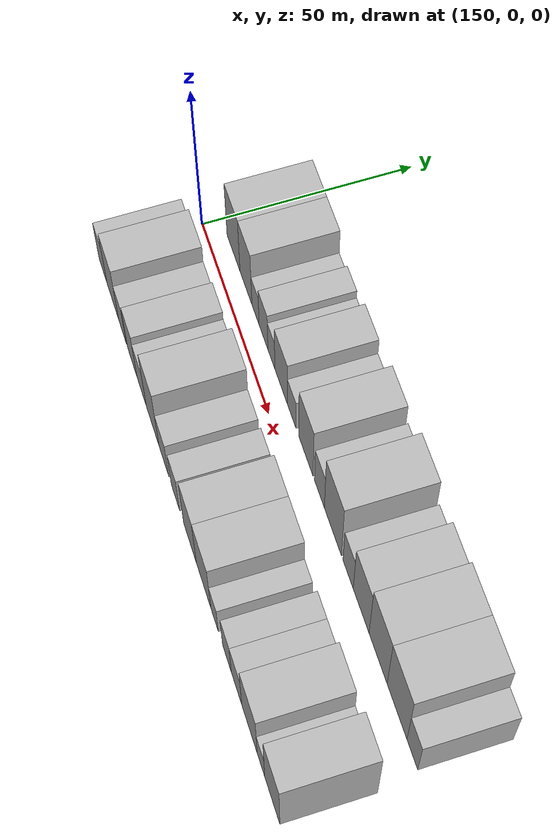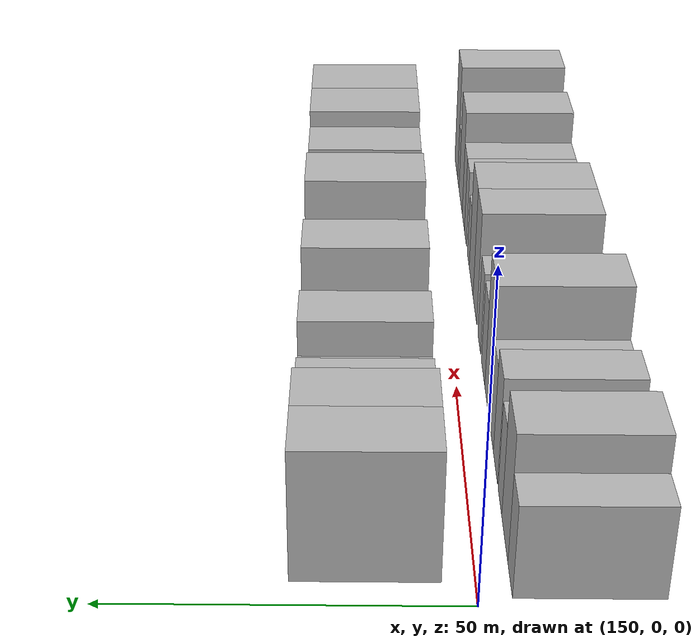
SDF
<sdf version="1.6">
 <world name="default">
  <model name="building_16">
   <static>1</static>
   <pose>159.4754 14.5000 0 0.000000 0.000000 1.570796</pose>
   <link name="link">
    <pose>0 0 10.50 0 0 0</pose>
    <collision name="collision"><geometry><box><size>20.0000 9.8442 21.0000</size></box></geometry></collision>
    <visual name="visual">
     <cast_shadows>0</cast_shadows>
     <geometry><box><size>20.0000 9.8442 21.0000</size></box></geometry>
     <material>
      <script>
       <uri>model://HANNAS_wall/materials/scripts</uri>
       <uri>model://HANNAS_wall/materials/textures</uri>
       <name>vrc/HANNAS_wall</name>
      </script>
     </material>
    </visual>
   </link>
  </model>
  <model name="building_17">
   <static>1</static>
   <pose>168.8859 14.5000 0 0.000000 0.000000 1.570796</pose>
   <link name="link">
    <pose>0 0 10.50 0 0 0</pose>
    <collision name="collision"><geometry><box><size>20.0000 8.9767 21.0000</size></box></geometry></collision>
    <visual name="visual">
     <cast_shadows>0</cast_shadows>
     <geometry><box><size>20.0000 8.9767 21.0000</size></box></geometry>
     <material>
      <script>
       <uri>model://HANNAS_wall/materials/scripts</uri>
       <uri>model://HANNAS_wall/materials/textures</uri>
       <name>vrc/HANNAS_wall</name>
      </script>
     </material>
    </visual>
   </link>
  </model>
  <model name="building_18">
   <static>1</static>
   <pose>176.0145 14.5000 0 0.000000 0.000000 1.570796</pose>
   <link name="link">
    <pose>0 0 6.00 0 0 0</pose>
    <collision name="collision"><geometry><box><size>20.0000 5.2805 12.0000</size></box></geometry></collision>
    <visual name="visual">
     <cast_shadows>0</cast_shadows>
     <geometry><box><size>20.0000 5.2805 12.0000</size></box></geometry>
     <material>
      <script>
       <uri>model://HANNAS_wall/materials/scripts</uri>
       <uri>model://HANNAS_wall/materials/textures</uri>
       <name>vrc/HANNAS_wall</name>
      </script>
     </material>
    </visual>
   </link>
  </model>
  <model name="building_19">
   <static>1</static>
   <pose>181.8732 14.5000 0 0.000000 0.000000 1.570796</pose>
   <link name="link">
    <pose>0 0 7.50 0 0 0</pose>
    <collision name="collision"><geometry><box><size>20.0000 6.4368 15.0000</size></box></geometry></collision>
    <visual name="visual">
     <cast_shadows>0</cast_shadows>
     <geometry><box><size>20.0000 6.4368 15.0000</size></box></geometry>
     <material>
      <script>
       <uri>model://HANNAS_wall/materials/scripts</uri>
       <uri>model://HANNAS_wall/materials/textures</uri>
       <name>vrc/HANNAS_wall</name>
      </script>
     </material>
    </visual>
   </link>
  </model>
  <model name="building_20">
   <static>1</static>
   <pose>187.6215 14.5000 0 0.000000 0.000000 1.570796</pose>
   <link name="link">
    <pose>0 0 6.00 0 0 0</pose>
    <collision name="collision"><geometry><box><size>20.0000 5.0598 12.0000</size></box></geometry></collision>
    <visual name="visual">
     <cast_shadows>0</cast_shadows>
     <geometry><box><size>20.0000 5.0598 12.0000</size></box></geometry>
     <material>
      <script>
       <uri>model://HANNAS_wall/materials/scripts</uri>
       <uri>model://HANNAS_wall/materials/textures</uri>
       <name>vrc/HANNAS_wall</name>
      </script>
     </material>
    </visual>
   </link>
  </model>
  <model name="building_21">
   <static>1</static>
   <pose>194.6478 14.5000 0 0.000000 0.000000 1.570796</pose>
   <link name="link">
    <pose>0 0 9.00 0 0 0</pose>
    <collision name="collision"><geometry><box><size>20.0000 8.9928 18.0000</size></box></geometry></collision>
    <visual name="visual">
     <cast_shadows>0</cast_shadows>
     <geometry><box><size>20.0000 8.9928 18.0000</size></box></geometry>
     <material>
      <script>
       <uri>model://HANNAS_wall/materials/scripts</uri>
       <uri>model://HANNAS_wall/materials/textures</uri>
       <name>vrc/HANNAS_wall</name>
      </script>
     </material>
    </visual>
   </link>
  </model>
  <model name="building_22">
   <static>1</static>
   <pose>202.1001 14.5000 0 0.000000 0.000000 1.570796</pose>
   <link name="link">
    <pose>0 0 6.00 0 0 0</pose>
    <collision name="collision"><geometry><box><size>20.0000 5.9119 12.0000</size></box></geometry></collision>
    <visual name="visual">
     <cast_shadows>0</cast_shadows>
     <geometry><box><size>20.0000 5.9119 12.0000</size></box></geometry>
     <material>
      <script>
       <uri>model://HANNAS_wall/materials/scripts</uri>
       <uri>model://HANNAS_wall/materials/textures</uri>
       <name>vrc/HANNAS_wall</name>
      </script>
     </material>
    </visual>
   </link>
  </model>
  <model name="building_23">
   <static>1</static>
   <pose>211.9157 14.5000 0 0.000000 0.000000 1.570796</pose>
   <link name="link">
    <pose>0 0 10.50 0 0 0</pose>
    <collision name="collision"><geometry><box><size>20.0000 9.7193 21.0000</size></box></geometry></collision>
    <visual name="visual">
     <cast_shadows>0</cast_shadows>
     <geometry><box><size>20.0000 9.7193 21.0000</size></box></geometry>
     <material>
      <script>
       <uri>model://HANNAS_wall/materials/scripts</uri>
       <uri>model://HANNAS_wall/materials/textures</uri>
       <name>vrc/HANNAS_wall</name>
      </script>
     </material>
    </visual>
   </link>
  </model>
  <model name="building_24">
   <static>1</static>
   <pose>221.1197 14.5000 0 0.000000 0.000000 1.570796</pose>
   <link name="link">
    <pose>0 0 7.50 0 0 0</pose>
    <collision name="collision"><geometry><box><size>20.0000 6.6887 15.0000</size></box></geometry></collision>
    <visual name="visual">
     <cast_shadows>0</cast_shadows>
     <geometry><box><size>20.0000 6.6887 15.0000</size></box></geometry>
     <material>
      <script>
       <uri>model://HANNAS_wall/materials/scripts</uri>
       <uri>model://HANNAS_wall/materials/textures</uri>
       <name>vrc/HANNAS_wall</name>
      </script>
     </material>
    </visual>
   </link>
  </model>
  <model name="building_25">
   <static>1</static>
   <pose>230.0817 14.5000 0 0.000000 0.000000 1.570796</pose>
   <link name="link">
    <pose>0 0 12.00 0 0 0</pose>
    <collision name="collision"><geometry><box><size>20.0000 11.2353 24.0000</size></box></geometry></collision>
    <visual name="visual">
     <cast_shadows>0</cast_shadows>
     <geometry><box><size>20.0000 11.2353 24.0000</size></box></geometry>
     <material>
      <script>
       <uri>model://HANNAS_wall/materials/scripts</uri>
       <uri>model://HANNAS_wall/materials/textures</uri>
       <name>vrc/HANNAS_wall</name>
      </script>
     </material>
    </visual>
   </link>
  </model>
  <model name="building_26">
   <static>1</static>
   <pose>240.0047 14.5000 0 0.000000 0.000000 1.570796</pose>
   <link name="link">
    <pose>0 0 7.50 0 0 0</pose>
    <collision name="collision"><geometry><box><size>20.0000 6.6107 15.0000</size></box></geometry></collision>
    <visual name="visual">
     <cast_shadows>0</cast_shadows>
     <geometry><box><size>20.0000 6.6107 15.0000</size></box></geometry>
     <material>
      <script>
       <uri>model://HANNAS_wall/materials/scripts</uri>
       <uri>model://HANNAS_wall/materials/textures</uri>
       <name>vrc/HANNAS_wall</name>
      </script>
     </material>
    </visual>
   </link>
  </model>
  <model name="building_27">
   <static>1</static>
   <pose>248.3241 14.5000 0 0.000000 0.000000 1.570796</pose>
   <link name="link">
    <pose>0 0 10.50 0 0 0</pose>
    <collision name="collision"><geometry><box><size>20.0000 10.0281 21.0000</size></box></geometry></collision>
    <visual name="visual">
     <cast_shadows>0</cast_shadows>
     <geometry><box><size>20.0000 10.0281 21.0000</size></box></geometry>
     <material>
      <script>
       <uri>model://HANNAS_wall/materials/scripts</uri>
       <uri>model://HANNAS_wall/materials/textures</uri>
       <name>vrc/HANNAS_wall</name>
      </script>
     </material>
    </visual>
   </link>
  </model>
  <model name="building_28">
   <static>1</static>
   <pose>258.9461 14.5000 0 0.000000 0.000000 1.570796</pose>
   <link name="link">
    <pose>0 0 12.00 0 0 0</pose>
    <collision name="collision"><geometry><box><size>20.0000 11.2160 24.0000</size></box></geometry></collision>
    <visual name="visual">
     <cast_shadows>0</cast_shadows>
     <geometry><box><size>20.0000 11.2160 24.0000</size></box></geometry>
     <material>
      <script>
       <uri>model://HANNAS_wall/materials/scripts</uri>
       <uri>model://HANNAS_wall/materials/textures</uri>
       <name>vrc/HANNAS_wall</name>
      </script>
     </material>
    </visual>
   </link>
  </model>
  <model name="building_29">
   <static>1</static>
   <pose>270.5428 14.5000 0 0.000000 0.000000 1.570796</pose>
   <link name="link">
    <pose>0 0 12.00 0 0 0</pose>
    <collision name="collision"><geometry><box><size>20.0000 11.9774 24.0000</size></box></geometry></collision>
    <visual name="visual">
     <cast_shadows>0</cast_shadows>
     <geometry><box><size>20.0000 11.9774 24.0000</size></box></geometry>
     <material>
      <script>
       <uri>model://HANNAS_wall/materials/scripts</uri>
       <uri>model://HANNAS_wall/materials/textures</uri>
       <name>vrc/HANNAS_wall</name>
      </script>
     </material>
    </visual>
   </link>
  </model>
  <model name="building_30">
   <static>1</static>
   <pose>279.7384 14.5000 0 0.000000 0.000000 1.570796</pose>
   <link name="link">
    <pose>0 0 7.50 0 0 0</pose>
    <collision name="collision"><geometry><box><size>20.0000 6.4136 15.0000</size></box></geometry></collision>
    <visual name="visual">
     <cast_shadows>0</cast_shadows>
     <geometry><box><size>20.0000 6.4136 15.0000</size></box></geometry>
     <material>
      <script>
       <uri>model://HANNAS_wall/materials/scripts</uri>
       <uri>model://HANNAS_wall/materials/textures</uri>
       <name>vrc/HANNAS_wall</name>
      </script>
     </material>
    </visual>
   </link>
  </model>
  <model name="building_45">
   <static>1</static>
   <pose>155.0330 -14.5000 0 0.000000 0.000000 1.570796</pose>
   <link name="link">
    <pose>0 0 7.50 0 0 0</pose>
    <collision name="collision"><geometry><box><size>20.0000 6.7495 15.0000</size></box></geometry></collision>
    <visual name="visual">
     <cast_shadows>0</cast_shadows>
     <geometry><box><size>20.0000 6.7495 15.0000</size></box></geometry>
     <material>
      <script>
       <uri>model://HANNAS_wall/materials/scripts</uri>
       <uri>model://HANNAS_wall/materials/textures</uri>
       <name>vrc/HANNAS_wall</name>
      </script>
     </material>
    </visual>
   </link>
  </model>
  <model name="building_46">
   <static>1</static>
   <pose>163.2947 -14.5000 0 0.000000 0.000000 1.570796</pose>
   <link name="link">
    <pose>0 0 10.50 0 0 0</pose>
    <collision name="collision"><geometry><box><size>20.0000 9.7739 21.0000</size></box></geometry></collision>
    <visual name="visual">
     <cast_shadows>0</cast_shadows>
     <geometry><box><size>20.0000 9.7739 21.0000</size></box></geometry>
     <material>
      <script>
       <uri>model://HANNAS_wall/materials/scripts</uri>
       <uri>model://HANNAS_wall/materials/textures</uri>
       <name>vrc/HANNAS_wall</name>
      </script>
     </material>
    </visual>
   </link>
  </model>
  <model name="building_47">
   <static>1</static>
   <pose>171.2815 -14.5000 0 0.000000 0.000000 1.570796</pose>
   <link name="link">
    <pose>0 0 7.50 0 0 0</pose>
    <collision name="collision"><geometry><box><size>20.0000 6.1996 15.0000</size></box></geometry></collision>
    <visual name="visual">
     <cast_shadows>0</cast_shadows>
     <geometry><box><size>20.0000 6.1996 15.0000</size></box></geometry>
     <material>
      <script>
       <uri>model://HANNAS_wall/materials/scripts</uri>
       <uri>model://HANNAS_wall/materials/textures</uri>
       <name>vrc/HANNAS_wall</name>
      </script>
     </material>
    </visual>
   </link>
  </model>
  <model name="building_48">
   <static>1</static>
   <pose>179.1591 -14.5000 0 0.000000 0.000000 1.570796</pose>
   <link name="link">
    <pose>0 0 9.00 0 0 0</pose>
    <collision name="collision"><geometry><box><size>20.0000 7.5556 18.0000</size></box></geometry></collision>
    <visual name="visual">
     <cast_shadows>0</cast_shadows>
     <geometry><box><size>20.0000 7.5556 18.0000</size></box></geometry>
     <material>
      <script>
       <uri>model://HANNAS_wall/materials/scripts</uri>
       <uri>model://HANNAS_wall/materials/textures</uri>
       <name>vrc/HANNAS_wall</name>
      </script>
     </material>
    </visual>
   </link>
  </model>
  <model name="building_49">
   <static>1</static>
   <pose>186.6302 -14.5000 0 0.000000 0.000000 1.570796</pose>
   <link name="link">
    <pose>0 0 7.50 0 0 0</pose>
    <collision name="collision"><geometry><box><size>20.0000 7.3866 15.0000</size></box></geometry></collision>
    <visual name="visual">
     <cast_shadows>0</cast_shadows>
     <geometry><box><size>20.0000 7.3866 15.0000</size></box></geometry>
     <material>
      <script>
       <uri>model://HANNAS_wall/materials/scripts</uri>
       <uri>model://HANNAS_wall/materials/textures</uri>
       <name>vrc/HANNAS_wall</name>
      </script>
     </material>
    </visual>
   </link>
  </model>
  <model name="building_50">
   <static>1</static>
   <pose>195.2859 -14.5000 0 0.000000 0.000000 1.570796</pose>
   <link name="link">
    <pose>0 0 12.00 0 0 0</pose>
    <collision name="collision"><geometry><box><size>20.0000 9.9250 24.0000</size></box></geometry></collision>
    <visual name="visual">
     <cast_shadows>0</cast_shadows>
     <geometry><box><size>20.0000 9.9250 24.0000</size></box></geometry>
     <material>
      <script>
       <uri>model://HANNAS_wall/materials/scripts</uri>
       <uri>model://HANNAS_wall/materials/textures</uri>
       <name>vrc/HANNAS_wall</name>
      </script>
     </material>
    </visual>
   </link>
  </model>
  <model name="building_51">
   <static>1</static>
   <pose>203.8950 -14.5000 0 0.000000 0.000000 1.570796</pose>
   <link name="link">
    <pose>0 0 7.50 0 0 0</pose>
    <collision name="collision"><geometry><box><size>20.0000 7.2931 15.0000</size></box></geometry></collision>
    <visual name="visual">
     <cast_shadows>0</cast_shadows>
     <geometry><box><size>20.0000 7.2931 15.0000</size></box></geometry>
     <material>
      <script>
       <uri>model://HANNAS_wall/materials/scripts</uri>
       <uri>model://HANNAS_wall/materials/textures</uri>
       <name>vrc/HANNAS_wall</name>
      </script>
     </material>
    </visual>
   </link>
  </model>
  <model name="building_52">
   <static>1</static>
   <pose>212.6656 -14.5000 0 0.000000 0.000000 1.570796</pose>
   <link name="link">
    <pose>0 0 7.50 0 0 0</pose>
    <collision name="collision"><geometry><box><size>20.0000 6.2482 15.0000</size></box></geometry></collision>
    <visual name="visual">
     <cast_shadows>0</cast_shadows>
     <geometry><box><size>20.0000 6.2482 15.0000</size></box></geometry>
     <material>
      <script>
       <uri>model://HANNAS_wall/materials/scripts</uri>
       <uri>model://HANNAS_wall/materials/textures</uri>
       <name>vrc/HANNAS_wall</name>
      </script>
     </material>
    </visual>
   </link>
  </model>
  <model name="building_53">
   <static>1</static>
   <pose>223.4510 -14.5000 0 0.000000 0.000000 1.570796</pose>
   <link name="link">
    <pose>0 0 10.50 0 0 0</pose>
    <collision name="collision"><geometry><box><size>20.0000 9.3225 21.0000</size></box></geometry></collision>
    <visual name="visual">
     <cast_shadows>0</cast_shadows>
     <geometry><box><size>20.0000 9.3225 21.0000</size></box></geometry>
     <material>
      <script>
       <uri>model://HANNAS_wall/materials/scripts</uri>
       <uri>model://HANNAS_wall/materials/textures</uri>
       <name>vrc/HANNAS_wall</name>
      </script>
     </material>
    </visual>
   </link>
  </model>
  <model name="building_54">
   <static>1</static>
   <pose>233.2850 -14.5000 0 0.000000 0.000000 1.570796</pose>
   <link name="link">
    <pose>0 0 10.50 0 0 0</pose>
    <collision name="collision"><geometry><box><size>20.0000 10.3456 21.0000</size></box></geometry></collision>
    <visual name="visual">
     <cast_shadows>0</cast_shadows>
     <geometry><box><size>20.0000 10.3456 21.0000</size></box></geometry>
     <material>
      <script>
       <uri>model://HANNAS_wall/materials/scripts</uri>
       <uri>model://HANNAS_wall/materials/textures</uri>
       <name>vrc/HANNAS_wall</name>
      </script>
     </material>
    </visual>
   </link>
  </model>
  <model name="building_55">
   <static>1</static>
   <pose>241.0732 -14.5000 0 0.000000 0.000000 1.570796</pose>
   <link name="link">
    <pose>0 0 6.00 0 0 0</pose>
    <collision name="collision"><geometry><box><size>20.0000 5.2307 12.0000</size></box></geometry></collision>
    <visual name="visual">
     <cast_shadows>0</cast_shadows>
     <geometry><box><size>20.0000 5.2307 12.0000</size></box></geometry>
     <material>
      <script>
       <uri>model://HANNAS_wall/materials/scripts</uri>
       <uri>model://HANNAS_wall/materials/textures</uri>
       <name>vrc/HANNAS_wall</name>
      </script>
     </material>
    </visual>
   </link>
  </model>
  <model name="building_56">
   <static>1</static>
   <pose>249.6919 -14.5000 0 0.000000 0.000000 1.570796</pose>
   <link name="link">
    <pose>0 0 7.50 0 0 0</pose>
    <collision name="collision"><geometry><box><size>20.0000 6.0066 15.0000</size></box></geometry></collision>
    <visual name="visual">
     <cast_shadows>0</cast_shadows>
     <geometry><box><size>20.0000 6.0066 15.0000</size></box></geometry>
     <material>
      <script>
       <uri>model://HANNAS_wall/materials/scripts</uri>
       <uri>model://HANNAS_wall/materials/textures</uri>
       <name>vrc/HANNAS_wall</name>
      </script>
     </material>
    </visual>
   </link>
  </model>
  <model name="building_57">
   <static>1</static>
   <pose>256.2719 -14.5000 0 0.000000 0.000000 1.570796</pose>
   <link name="link">
    <pose>0 0 7.50 0 0 0</pose>
    <collision name="collision"><geometry><box><size>20.0000 7.1534 15.0000</size></box></geometry></collision>
    <visual name="visual">
     <cast_shadows>0</cast_shadows>
     <geometry><box><size>20.0000 7.1534 15.0000</size></box></geometry>
     <material>
      <script>
       <uri>model://HANNAS_wall/materials/scripts</uri>
       <uri>model://HANNAS_wall/materials/textures</uri>
       <name>vrc/HANNAS_wall</name>
      </script>
     </material>
    </visual>
   </link>
  </model>
  <model name="building_58">
   <static>1</static>
   <pose>265.0054 -14.5000 0 0.000000 0.000000 1.570796</pose>
   <link name="link">
    <pose>0 0 10.50 0 0 0</pose>
    <collision name="collision"><geometry><box><size>20.0000 10.3135 21.0000</size></box></geometry></collision>
    <visual name="visual">
     <cast_shadows>0</cast_shadows>
     <geometry><box><size>20.0000 10.3135 21.0000</size></box></geometry>
     <material>
      <script>
       <uri>model://HANNAS_wall/materials/scripts</uri>
       <uri>model://HANNAS_wall/materials/textures</uri>
       <name>vrc/HANNAS_wall</name>
      </script>
     </material>
    </visual>
   </link>
  </model>
  <model name="building_59">
   <static>1</static>
   <pose>272.6221 -14.5000 0 0.000000 0.000000 1.570796</pose>
   <link name="link">
    <pose>0 0 6.00 0 0 0</pose>
    <collision name="collision"><geometry><box><size>20.0000 4.9200 12.0000</size></box></geometry></collision>
    <visual name="visual">
     <cast_shadows>0</cast_shadows>
     <geometry><box><size>20.0000 4.9200 12.0000</size></box></geometry>
     <material>
      <script>
       <uri>model://HANNAS_wall/materials/scripts</uri>
       <uri>model://HANNAS_wall/materials/textures</uri>
       <name>vrc/HANNAS_wall</name>
      </script>
     </material>
    </visual>
   </link>
  </model>
  <model name="building_60">
   <static>1</static>
   <pose>279.9718 -14.5000 0 0.000000 0.000000 1.570796</pose>
   <link name="link">
    <pose>0 0 12.00 0 0 0</pose>
    <collision name="collision"><geometry><box><size>20.0000 9.7793 24.0000</size></box></geometry></collision>
    <visual name="visual">
     <cast_shadows>0</cast_shadows>
     <geometry><box><size>20.0000 9.7793 24.0000</size></box></geometry>
     <material>
      <script>
       <uri>model://HANNAS_wall/materials/scripts</uri>
       <uri>model://HANNAS_wall/materials/textures</uri>
       <name>vrc/HANNAS_wall</name>
      </script>
     </material>
    </visual>
   </link>
  </model>
 </world>
</sdf>
